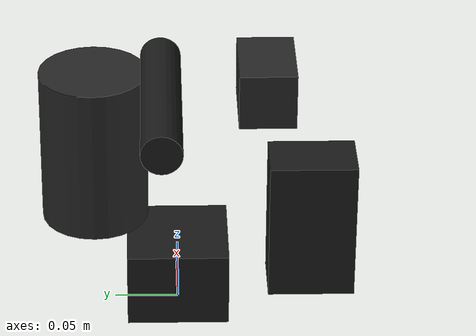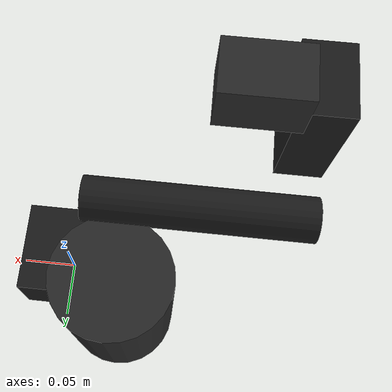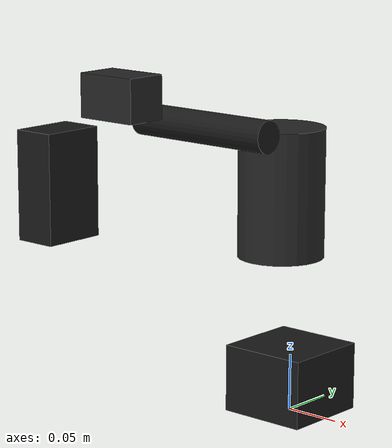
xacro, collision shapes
<?xml version="1.0"?>
<robot name="3DoF_RRR_Robot_Arm" xmlns:xacro="http://www.ros.org/wiki/xacro">

  <!-- Hardware Interface Argument (from yaml or launch) -->
  <xacro:arg name="hw_interface" default="PositionJointInterface"/>
  <xacro:property name="hw_interface" value="$(arg hw_interface)"/>

  <!-- Transmission Macro -->
  <xacro:macro name="joint_transmission" params="joint_name">
    <transmission name="trans_${joint_name}">
      <type>transmission_interface/SimpleTransmission</type>
      <joint name="${joint_name}">
        <hardwareInterface>hardware_interface/${hw_interface}</hardwareInterface>
      </joint>
      <actuator name="motor_${joint_name}">
        <hardwareInterface>hardware_interface/${hw_interface}</hardwareInterface>
        <mechanicalReduction>1</mechanicalReduction>
      </actuator>
    </transmission>
  </xacro:macro>

  <!-- Materials -->
  <material name="Black"><color rgba="0.1 0.1 0.1 1.0"/></material>
  <material name="DarkGrey"><color rgba="0.2 0.2 0.2 1.0"/></material>
  <material name="Red"><color rgba="0.1 0.1 0.1 1.0"/></material>
  <material name="Green"><color rgba="0.1 0.1 0.1 1.0"/></material>
  <material name="Blue"><color rgba="0.15 0.15 0.15 1.0"/></material>
  <material name="Yellow"><color rgba="0.2 0.2 0.2 1.0"/></material>
  <material name="Cyan"><color rgba="0.15 0.15 0.15 1.0"/></material>
  <material name="Magenta"><color rgba="0.1 0.1 0.1 1.0"/></material>
  <material name="Orange"><color rgba="0.2 0.2 0.2 1.0"/></material>
  <material name="Lime"><color rgba="0.15 0.15 0.15 1.0"/></material>
  <material name="Pink"><color rgba="0.1 0.1 0.1 1.0"/></material>
  <material name="Brown"><color rgba="0.1 0.1 0.1 1.0"/></material>
  <material name="Grey"><color rgba="0.2 0.2 0.2 1.0"/></material>

  <!-- World link -->
  <link name="world"/>

  <joint name="world_to_base" type="fixed">
    <parent link="world"/>
    <child link="base_link"/>
    <origin xyz="0 0 0" rpy="3.14159 0 0"/>
  </joint>

  <!-- Base Link -->
  <link name="base_link">
    <visual>
      <origin xyz="0 0 0" rpy="0 0 0"/>
      <geometry><mesh filename="package://3dof_rrr_robot_arm/meshes/base_part2.stl" scale="0.001 0.001 0.001"/></geometry>
      <material name="Red"/>
    </visual>
    <collision>
      <origin xyz="0 0 -0.03" rpy="0 0 0"/>
      <geometry><box size="0.08 0.08 0.06"/></geometry>
    </collision>
    <inertial>
      <origin xyz="0 0 -0.03" rpy="0 0 0"/>
      <mass value="0.5"/>
      <inertia ixx="0.001" ixy="0" ixz="0" iyy="0.001" iyz="0" izz="0.001"/>
    </inertial>
  </link>

  <!-- Joint 1 -->
  <joint name="joint1" type="revolute">
    <parent link="base_link"/>
    <child link="link1"/>
    <origin xyz="-0.0625 -0.0627 -0.2274" rpy="0 0 0"/>
    <axis xyz="0 0 1"/>
    <limit lower="-2.268" upper="2.268" effort="10.0" velocity="1.0"/>
    <dynamics damping="2.0" friction="0.5"/>
  </joint>

  <!-- Link 1 -->
  <link name="link1">
    <visual>
      <origin xyz="0.0625 0.0627 0.2274" rpy="0 0 0"/>
      <geometry><mesh filename="package://3dof_rrr_robot_arm/meshes/base_part1.stl" scale="0.001 0.001 0.001"/></geometry>
      <material name="Blue"/>
    </visual>
    <visual>
      <origin xyz="0.0625 0.0627 0.2274" rpy="0 0 0"/>
      <geometry><mesh filename="package://3dof_rrr_robot_arm/meshes/base_link.stl" scale="0.001 0.001 0.001"/></geometry>
      <material name="Green"/>
    </visual>
    <visual>
      <origin xyz="0.0625 0.0627 0.2274" rpy="0 0 0"/>
      <geometry><mesh filename="package://3dof_rrr_robot_arm/meshes/rulman.stl" scale="0.001 0.001 0.001"/></geometry>
      <material name="Yellow"/>
    </visual>
    <visual>
      <origin xyz="0.0625 0.0627 0.2274" rpy="0 0 0"/>
      <geometry><mesh filename="package://3dof_rrr_robot_arm/meshes/servo_1.stl" scale="0.001 0.001 0.001"/></geometry>
      <material name="Cyan"/>
    </visual>
    <collision>
      <origin xyz="0 0 0.05" rpy="0 0 0"/>
      <geometry><cylinder radius="0.04" length="0.12"/></geometry>
    </collision>
    <inertial>
      <origin xyz="0 0 0.05" rpy="0 0 0"/>
      <mass value="0.3"/>
      <inertia ixx="0.0005" ixy="0" ixz="0" iyy="0.0005" iyz="0" izz="0.0003"/>
    </inertial>
  </link>

  <!-- Joint 2 -->
  <joint name="joint2" type="revolute">
    <parent link="link1"/>
    <child link="link2"/>
    <origin xyz="0 0 -0.0099" rpy="0 0 0"/>
    <axis xyz="-0.6534 -0.5970 0.0"/>
    <limit lower="0" upper="2.0" effort="10.0" velocity="1.0"/>
    <dynamics damping="0.8" friction="0.2"/>
  </joint>

  <!-- Link 2 -->
  <link name="link2">
    <visual>
      <origin xyz="0.0625 0.0627 0.2383" rpy="0 0 0"/>
      <geometry><mesh filename="package://3dof_rrr_robot_arm/meshes/link_1.stl" scale="0.001 0.001 0.001"/></geometry>
      <material name="Magenta"/>
    </visual>
    <visual>
      <origin xyz="0.0625 0.0627 0.2383" rpy="0 0 0"/>
      <geometry><mesh filename="package://3dof_rrr_robot_arm/meshes/metal_part_servo2.stl" scale="0.001 0.001 0.001"/></geometry>
      <material name="Orange"/>
    </visual>
    <visual>
      <origin xyz="0.0625 0.0627 0.2383" rpy="0 0 0"/>
      <geometry><mesh filename="package://3dof_rrr_robot_arm/meshes/link_2_cover.stl" scale="0.001 0.001 0.001"/></geometry>
      <material name="Pink"/>
    </visual>
    <visual>
      <origin xyz="0.0625 0.0627 0.2383" rpy="0 0 0"/>
      <geometry><mesh filename="package://3dof_rrr_robot_arm/meshes/link_sonu_Servo.stl" scale="0.001 0.001 0.001"/></geometry>
      <material name="Pink"/>
    </visual>
    <collision>
      <origin xyz="-0.05 0.05 0" rpy="0 1.57 0"/>
      <geometry><cylinder radius="0.015" length="0.15"/></geometry>
    </collision>
    <inertial>
      <origin xyz="-0.05 0.05 0" rpy="0 0 0"/>
      <mass value="0.2"/>
      <inertia ixx="0.0003" ixy="0" ixz="0" iyy="0.0003" iyz="0" izz="0.0002"/>
    </inertial>
  </link>

  <!-- Joint 3 -->
  <joint name="joint3" type="revolute">
    <parent link="link2"/>
    <child link="link3"/>
    <origin xyz="-0.1322 0.1533 -0.0337" rpy="0 0 0"/>
    <axis xyz="-0.6534 -0.5570 0"/>
    <limit lower="0" upper="2.0" effort="10.0" velocity="1.0"/>
    <dynamics damping="2.0" friction="0.5"/>
  </joint>

  <!-- Link 3 -->
  <link name="link3">
    <visual>
      <origin xyz="0.1947 -0.0906 0.2727" rpy="0 0 0"/>
      <geometry><mesh filename="package://3dof_rrr_robot_arm/meshes/servo_2.stl" scale="0.001 0.001 0.001"/></geometry>
      <material name="Lime"/>
    </visual>
    <collision>
      <origin xyz="0.05 -0.03 0" rpy="0 0 0"/>
      <geometry><box size="0.06 0.04 0.04"/></geometry>
    </collision>
    <inertial>
      <origin xyz="0.05 -0.03 0" rpy="0 0 0"/>
      <mass value="0.15"/>
      <inertia ixx="0.0002" ixy="0" ixz="0" iyy="0.0002" iyz="0" izz="0.0001"/>
    </inertial>
  </link>

  <!-- Gripper Joint -->
  <joint name="gripper_joint" type="fixed">
    <parent link="link3"/>
    <child link="gripper_link"/>
    <origin xyz="0 0 0" rpy="0 0 0"/>
  </joint>

  <!-- Gripper Link -->
  <link name="gripper_link">
    <visual>
      <origin xyz="0.1947 -0.0906 0.2627" rpy="0 0 0"/>
      <geometry><mesh filename="package://3dof_rrr_robot_arm/meshes/gripper.stl" scale="0.001 0.001 0.001"/></geometry>
      <material name="Brown"/>
    </visual>
    <visual>
      <origin xyz="0.1947 -0.0906 0.2627" rpy="0 0 0"/>
      <geometry><mesh filename="package://3dof_rrr_robot_arm/meshes/kapak_new.stl" scale="0.001 0.001 0.001"/></geometry>
      <material name="Grey"/>
    </visual>
    <collision>
      <origin xyz="0 0 0.08" rpy="0 0 0"/>
      <geometry><box size="0.04 0.06 0.1"/></geometry>
    </collision>
    <inertial>
      <origin xyz="0 0 0.08" rpy="0 0 0"/>
      <mass value="0.1"/>
      <inertia ixx="0.0001" ixy="0" ixz="0" iyy="0.0001" iyz="0" izz="0.00005"/>
    </inertial>
  </link>

  <!-- Tool Tip Joint -->
  <joint name="tool_tip_joint" type="fixed">
    <parent link="gripper_link"/>
    <child link="tool_tip"/>
    <origin xyz="-0.05 0.06 0.2" rpy="0 0 0"/>
  </joint>

  <!-- Tool Tip Link (invisible - just for reference frame) -->
  <link name="tool_tip">
    <!-- Visual removed - soldering effect will be spawned here -->
    <inertial>
      <mass value="0.001"/>
      <inertia ixx="0.000001" ixy="0" ixz="0" iyy="0.000001" iyz="0" izz="0.000001"/>
    </inertial>
  </link>

  <!-- ==================== GAZEBO SPECIFIC ==================== -->

  <!-- Gazebo Colors - All Black/Dark -->
  <gazebo reference="base_link">
    <material>Gazebo/Black</material>
  </gazebo>
  <gazebo reference="link1">
    <material>Gazebo/DarkGrey</material>
  </gazebo>
  <gazebo reference="link2">
    <material>Gazebo/Black</material>
    <self_collide>false</self_collide>
  </gazebo>
  <gazebo reference="link3">
    <material>Gazebo/DarkGrey</material>
    <self_collide>false</self_collide>
  </gazebo>
  <gazebo reference="gripper_link">
    <material>Gazebo/Black</material>
    <self_collide>false</self_collide>
  </gazebo>
  <gazebo reference="tool_tip">
    <material>Gazebo/Red</material>
  </gazebo>

  <!-- ros_control plugin -->
  <gazebo>
    <plugin name="gazebo_ros_control" filename="libgazebo_ros_control.so">
      <robotNamespace>/</robotNamespace>
      <robotSimType>gazebo_ros_control/DefaultRobotHWSim</robotSimType>
      <legacyModeNS>true</legacyModeNS>
    </plugin>
  </gazebo>

  <!-- Transmissions (uses hw_interface from argument) -->
  <xacro:joint_transmission joint_name="joint1"/>
  <xacro:joint_transmission joint_name="joint2"/>
  <xacro:joint_transmission joint_name="joint3"/>

</robot>
